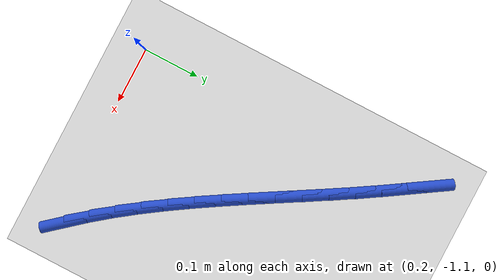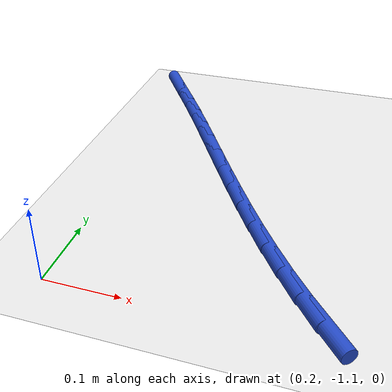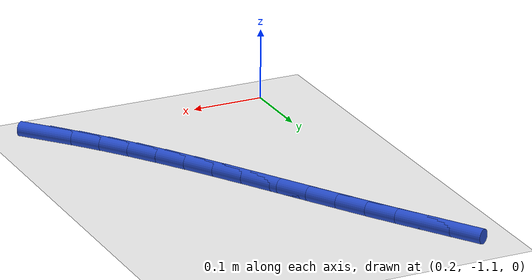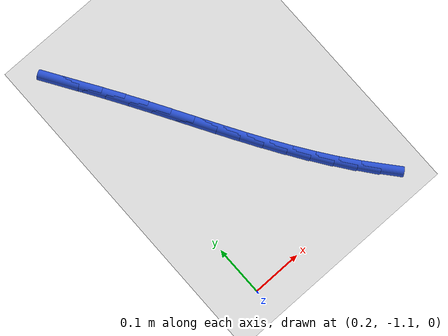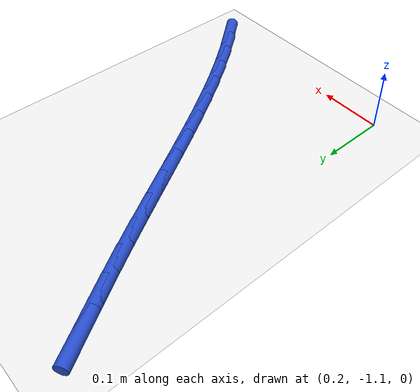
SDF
<sdf version="1.6">
 <world name="default">
  <model name="ground_plane">
   <static>1</static>
   <link name="link">
    <collision name="collision">
     <geometry><plane><normal>0 0 1</normal><size>100 100</size></plane></geometry>
     <surface><friction><ode><mu>100</mu><mu2>50</mu2></ode></friction></surface>
    </collision>
    <visual name="visual">
     <cast_shadows>0</cast_shadows>
     <geometry><plane><normal>0 0 1</normal><size>100 100</size></plane></geometry>
     <material>
      <script><uri>file://media/materials/scripts/gazebo.material</uri><name>Gazebo/WhiteGlow</name></script>
     </material>
    </visual>
   </link>
  </model>
  <model name="line">
   <link name="link_152">
    <pose>0.5236968911424762 -1.0843995469559524 0.01 0 1.57 -0.8673974913785633</pose>
    <collision name="collision">
     <geometry><cylinder><radius>0.01</radius><length>0.08</length></cylinder></geometry>
    </collision>
    <visual name="visual">
     <material>
      <script><name>Gazebo/Blue</name><uri>file://media/materials/scripts/gazebo.material</uri></script>
     </material>
     <geometry><cylinder><radius>0.01</radius><length>0.08</length></cylinder></geometry>
    </visual>
   </link>
   <link name="link_153">
    <pose>0.4959631491124252 -1.0516991056673928 0.01 0 1.57 -0.9082011887315095</pose>
    <collision name="collision">
     <geometry><cylinder><radius>0.01</radius><length>0.08</length></cylinder></geometry>
    </collision>
    <visual name="visual">
     <material>
      <script><name>Gazebo/Blue</name><uri>file://media/materials/scripts/gazebo.material</uri></script>
     </material>
     <geometry><cylinder><radius>0.01</radius><length>0.08</length></cylinder></geometry>
    </visual>
   </link>
   <link name="link_154">
    <pose>0.4692765495424817 -1.0174974258873446 0.01 0 1.57 -0.942834776697876</pose>
    <collision name="collision">
     <geometry><cylinder><radius>0.01</radius><length>0.08</length></cylinder></geometry>
    </collision>
    <visual name="visual">
     <material>
      <script><name>Gazebo/Blue</name><uri>file://media/materials/scripts/gazebo.material</uri></script>
     </material>
     <geometry><cylinder><radius>0.01</radius><length>0.08</length></cylinder></geometry>
    </visual>
   </link>
   <link name="link_155">
    <pose>0.44350449494260663 -0.981998593701913 0.01 0 1.57 -0.9716113520493969</pose>
    <collision name="collision">
     <geometry><cylinder><radius>0.01</radius><length>0.08</length></cylinder></geometry>
    </collision>
    <visual name="visual">
     <material>
      <script><name>Gazebo/Blue</name><uri>file://media/materials/scripts/gazebo.material</uri></script>
     </material>
     <geometry><cylinder><radius>0.01</radius><length>0.08</length></cylinder></geometry>
    </visual>
   </link>
   <link name="link_156">
    <pose>0.41851438782275935 -0.9454066951972008 0.01 0 1.57 -0.9948303572031255</pose>
    <collision name="collision">
     <geometry><cylinder><radius>0.01</radius><length>0.08</length></cylinder></geometry>
    </collision>
    <visual name="visual">
     <material>
      <script><name>Gazebo/Blue</name><uri>file://media/materials/scripts/gazebo.material</uri></script>
     </material>
     <geometry><cylinder><radius>0.01</radius><length>0.08</length></cylinder></geometry>
    </visual>
   </link>
   <link name="link_157">
    <pose>0.39417363069289985 -0.9079258164593117 0.01 0 1.57 -1.0127549793574342</pose>
    <collision name="collision">
     <geometry><cylinder><radius>0.01</radius><length>0.08</length></cylinder></geometry>
    </collision>
    <visual name="visual">
     <material>
      <script><name>Gazebo/Blue</name><uri>file://media/materials/scripts/gazebo.material</uri></script>
     </material>
     <geometry><cylinder><radius>0.01</radius><length>0.08</length></cylinder></geometry>
    </visual>
   </link>
   <link name="link_158">
    <pose>0.3703496260629876 -0.8697600435743483 0.01 0 1.57 -1.0255979081085074</pose>
    <collision name="collision">
     <geometry><cylinder><radius>0.01</radius><length>0.08</length></cylinder></geometry>
    </collision>
    <visual name="visual">
     <material>
      <script><name>Gazebo/Blue</name><uri>file://media/materials/scripts/gazebo.material</uri></script>
     </material>
     <geometry><cylinder><radius>0.01</radius><length>0.08</length></cylinder></geometry>
    </visual>
   </link>
   <link name="link_159">
    <pose>0.34690977644298227 -0.8311134626284142 0.01 0 1.57 -1.0335127232022114</pose>
    <collision name="collision">
     <geometry><cylinder><radius>0.01</radius><length>0.08</length></cylinder></geometry>
    </collision>
    <visual name="visual">
     <material>
      <script><name>Gazebo/Blue</name><uri>file://media/materials/scripts/gazebo.material</uri></script>
     </material>
     <geometry><cylinder><radius>0.01</radius><length>0.08</length></cylinder></geometry>
    </visual>
   </link>
   <link name="link_160">
    <pose>0.3237214843428446 -0.7921901597076138 0.01 0 1.57 -1.0365888304420214</pose>
    <collision name="collision">
     <geometry><cylinder><radius>0.01</radius><length>0.08</length></cylinder></geometry>
    </collision>
    <visual name="visual">
     <material>
      <script><name>Gazebo/Blue</name><uri>file://media/materials/scripts/gazebo.material</uri></script>
     </material>
     <geometry><cylinder><radius>0.01</radius><length>0.08</length></cylinder></geometry>
    </visual>
   </link>
   <link name="link_161">
    <pose>0.3006521522725339 -0.7531942208980497 0.01 0 1.57 -1.0348485201311899</pose>
    <collision name="collision">
     <geometry><cylinder><radius>0.01</radius><length>0.08</length></cylinder></geometry>
    </collision>
    <visual name="visual">
     <material>
      <script><name>Gazebo/Blue</name><uri>file://media/materials/scripts/gazebo.material</uri></script>
     </material>
     <geometry><cylinder><radius>0.01</radius><length>0.08</length></cylinder></geometry>
    </visual>
   </link>
   <link name="link_162">
    <pose>0.2775691827420101 -0.714329732285826 0.01 0 1.57 -1.0282453146568475</pose>
    <collision name="collision">
     <geometry><cylinder><radius>0.01</radius><length>0.08</length></cylinder></geometry>
    </collision>
    <visual name="visual">
     <material>
      <script><name>Gazebo/Blue</name><uri>file://media/materials/scripts/gazebo.material</uri></script>
     </material>
     <geometry><cylinder><radius>0.01</radius><length>0.08</length></cylinder></geometry>
    </visual>
   </link>
   <link name="link_163">
    <pose>0.25433997826123295 -0.6758007799570452 0.01 0 1.57 -1.016668696644048</pose>
    <collision name="collision">
     <geometry><cylinder><radius>0.01</radius><length>0.08</length></cylinder></geometry>
    </collision>
    <visual name="visual">
     <material>
      <script><name>Gazebo/Blue</name><uri>file://media/materials/scripts/gazebo.material</uri></script>
     </material>
     <geometry><cylinder><radius>0.01</radius><length>0.08</length></cylinder></geometry>
    </visual>
   </link>
   <link name="link_164">
    <pose>0.23083212289962765 -0.6378112858441246 0.01 0 1.57 -1.0033512737483805</pose>
    <collision name="collision">
     <geometry><cylinder><radius>0.01</radius><length>0.08</length></cylinder></geometry>
    </collision>
    <visual name="visual">
     <material>
      <script><name>Gazebo/Blue</name><uri>file://media/materials/scripts/gazebo.material</uri></script>
     </material>
     <geometry><cylinder><radius>0.01</radius><length>0.08</length></cylinder></geometry>
    </visual>
   </link>
   <link name="link_165">
    <pose>0.20702699712830855 -0.6004622849335964 0.01 0 1.57 -0.9975339429568392</pose>
    <collision name="collision">
     <geometry><cylinder><radius>0.01</radius><length>0.08</length></cylinder></geometry>
    </collision>
    <visual name="visual">
     <material>
      <script><name>Gazebo/Blue</name><uri>file://media/materials/scripts/gazebo.material</uri></script>
     </material>
     <geometry><cylinder><radius>0.01</radius><length>0.08</length></cylinder></geometry>
    </visual>
   </link>
   <link name="link_166">
    <pose>0.1832140782278452 -0.5635762520880333 0.01 0 1.57 -1.0009926214034972</pose>
    <collision name="collision">
     <geometry><cylinder><radius>0.01</radius><length>0.08</length></cylinder></geometry>
    </collision>
    <visual name="visual">
     <material>
      <script><name>Gazebo/Blue</name><uri>file://media/materials/scripts/gazebo.material</uri></script>
     </material>
     <geometry><cylinder><radius>0.01</radius><length>0.08</length></cylinder></geometry>
    </visual>
   </link>
  </model>
 </world>
</sdf>
